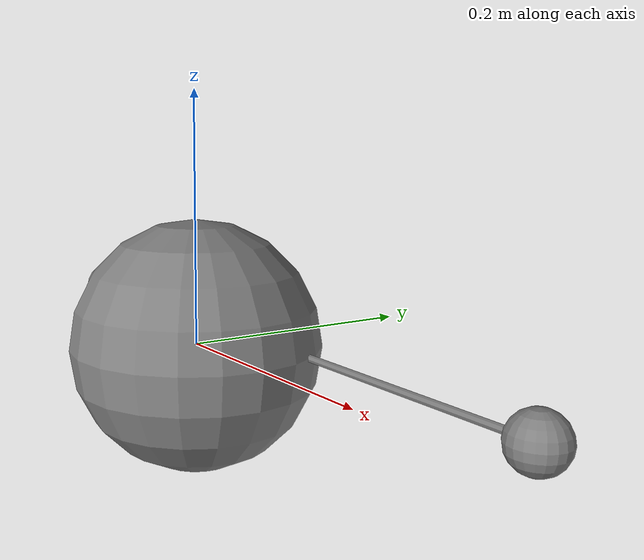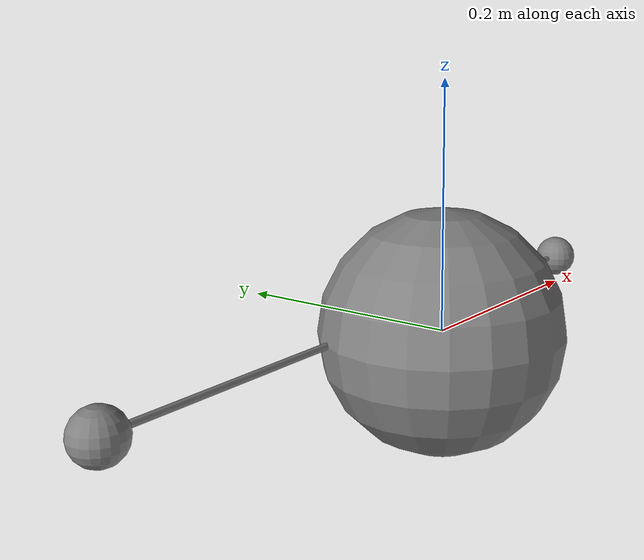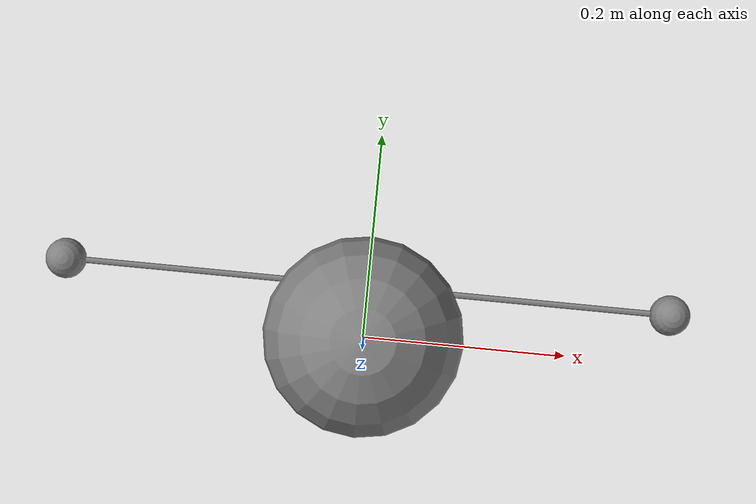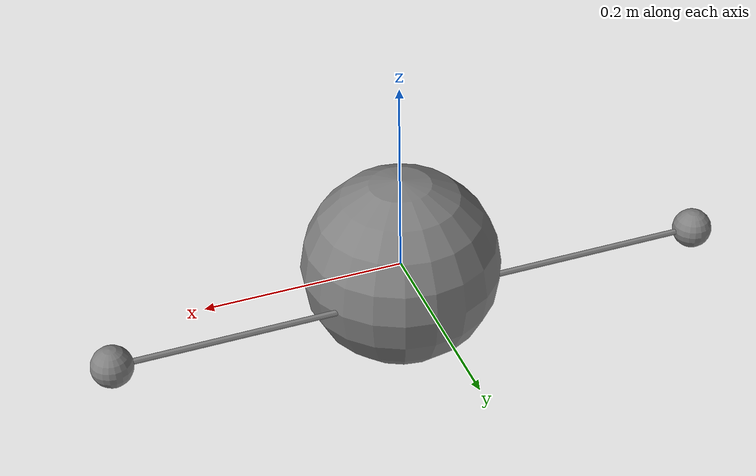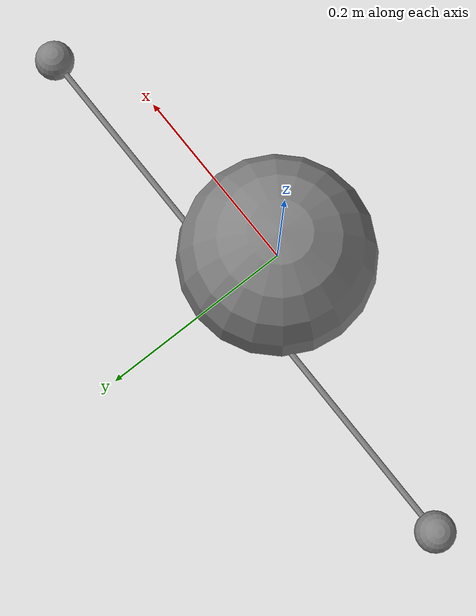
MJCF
<mujoco>
  <worldbody>
    <body name="b1" pos="-0.3 0.05 0">
      <joint name="j1" type="hinge" axis="0 0 1"/>
      <geom type="sphere" size="0.02"/>
      <site name="origin" pos="0 0 0"/>
    </body>
    <body name="wrap_body" pos="0 0 0">
      <geom name="wrap_sphere" type="sphere" size="0.1"/>
    </body>
    <body name="b2" pos="0.3 0.05 0">
      <joint name="j2" type="hinge" axis="0 0 1"/>
      <geom type="sphere" size="0.02"/>
      <site name="insertion" pos="0 0 0"/>
    </body>
  </worldbody>
  <tendon>
    <spatial name="t_wrap" stiffness="200">
      <site site="origin"/>
      <geom geom="wrap_sphere"/>
      <site site="insertion"/>
    </spatial>
  </tendon>
</mujoco>
